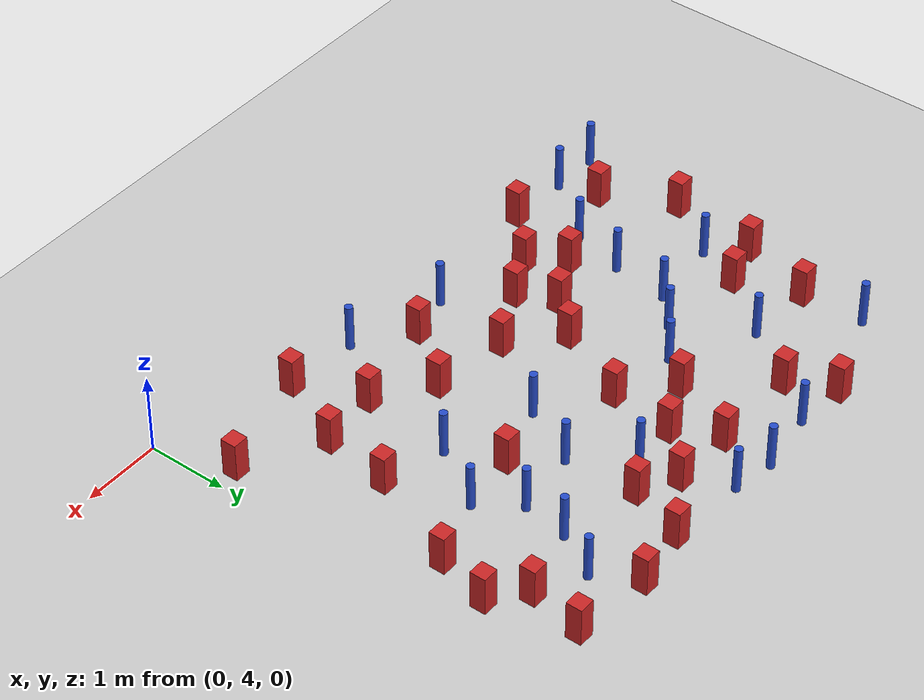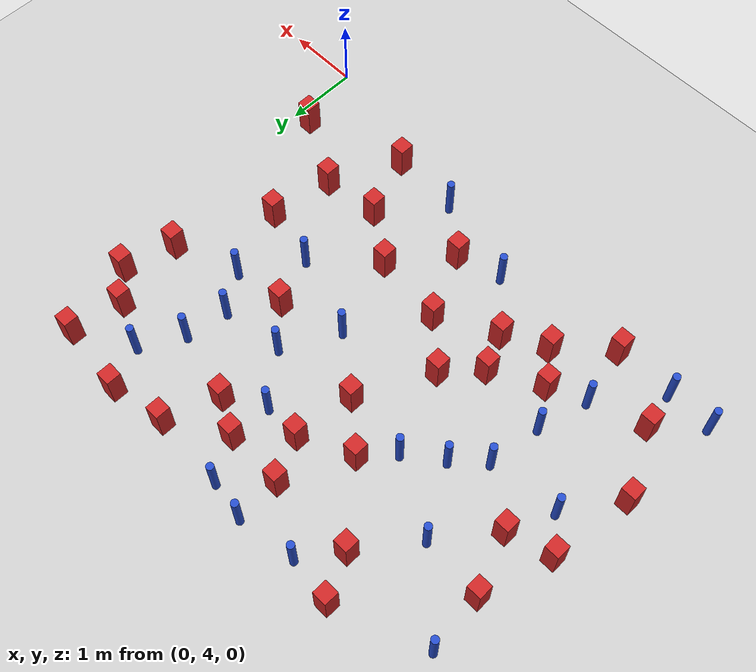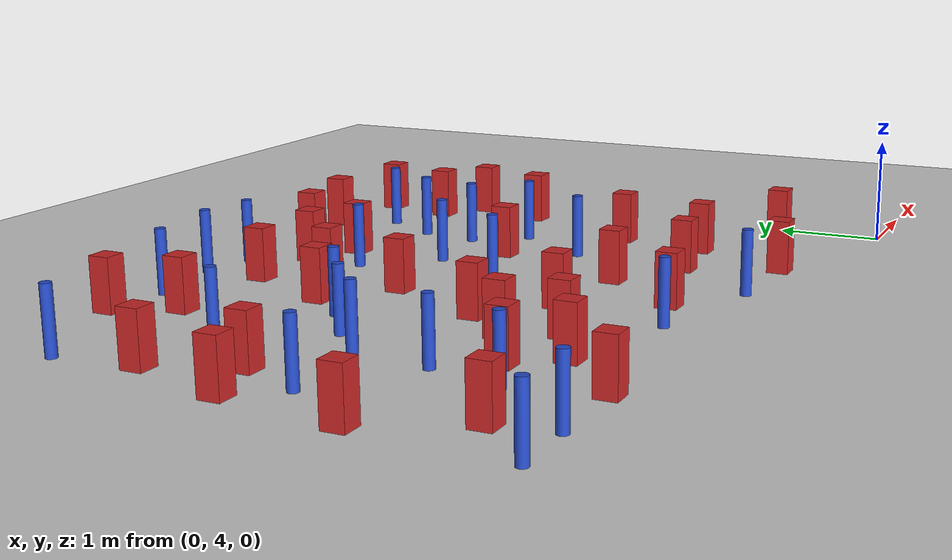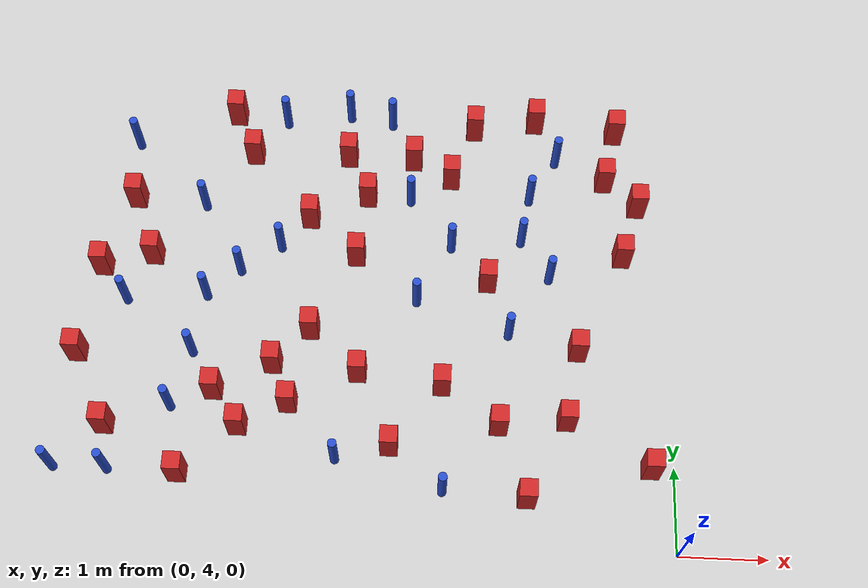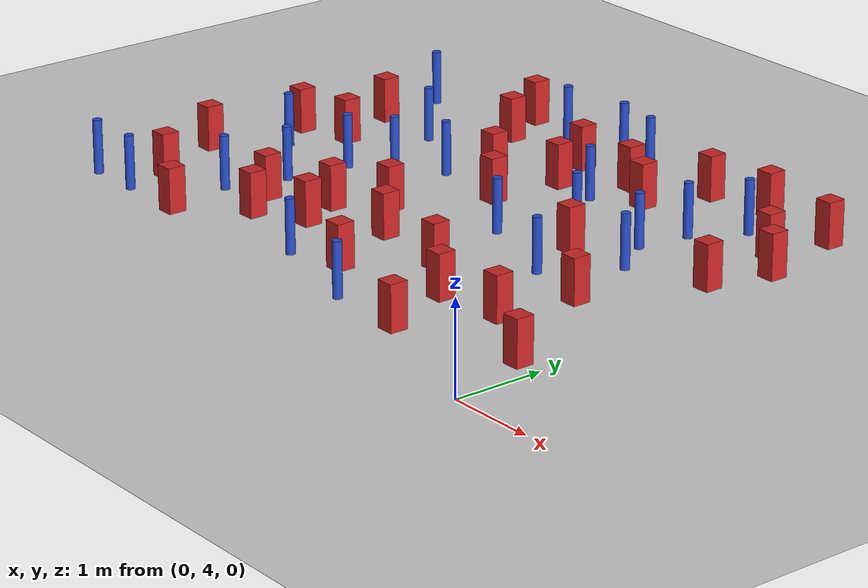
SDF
<sdf version="1.6">
 <world name="default">
  <model name="ground_plane">
   <static>1</static>
   <link name="link">
    <collision name="collision">
     <geometry><plane><normal>0 0 1</normal><size>100 100</size></plane></geometry>
     <surface><friction><ode><mu>100</mu><mu2>50</mu2></ode></friction></surface>
    </collision>
    <visual name="visual">
     <cast_shadows>0</cast_shadows>
     <geometry><plane><normal>0 0 1</normal><size>100 100</size></plane></geometry>
     <material>
      <ambient>1.0 1.0 1.0 1.0</ambient>
      <diffuse>0.8 0.8 0.8 1.0</diffuse>
      <specular>0.01 0.01 0.01 1.000000</specular>
     </material>
    </visual>
   </link>
  </model>
  <model name="square_post_obstacle2">
   <static>true</static>
   <pose>-3.61233754087 5.97910973367 1.91545236811e-07 -7.35059704564e-06 1.12565212e-07 2.39332434364e-05</pose>
   <link name="link">
    <pose>0 0 0.25 0 -0 0</pose>
    <inertial>
     <mass>100</mass>
     <inertia>
      <ixx>0.166667</ixx>
      <ixy>0</ixy>
      <ixz>0</ixz>
      <iyy>0.166667</iyy>
      <iyz>0</iyz>
      <izz>0.166667</izz>
     </inertia>
    </inertial>
    <collision name="collision"><geometry><box><size>.2 .2 .5</size></box></geometry></collision>
    <visual name="visual">
     <geometry><box><size>.2 .2 .5</size></box></geometry>
     <material>
      <script><name>Gazebo/Red</name><uri>file://media/materials/scripts/gazebo.material</uri></script>
     </material>
    </visual>
   </link>
  </model>
  <model name="pole_obstacle1">
   <static>true</static>
   <pose>-1.4139109991 7.27268750884 7.38925637345e-09 -8.47170692799e-08 1.24976765033e-08 -1.74513093018e-07</pose>
   <link name="link">
    <pose>0 0 0.3 0 -0 0</pose>
    <inertial>
     <mass>1</mass>
     <inertia><ixx>0.145833</ixx><ixy>0</ixy><ixz>0</ixz><iyy>0.145833</iyy><iyz>0</iyz><izz>0.125</izz></inertia>
    </inertial>
    <collision name="collision">
     <geometry><cylinder><radius>0.05</radius><length>.6</length></cylinder></geometry>
    </collision>
    <visual name="visual">
     <geometry><cylinder><radius>0.05</radius><length>.6</length></cylinder></geometry>
     <material>
      <script><name>Gazebo/Blue</name><uri>file://media/materials/scripts/gazebo.material</uri></script>
     </material>
    </visual>
   </link>
  </model>
  <model name="square_post_obstacle10">
   <static>true</static>
   <pose>-4.59428738183 6.04871072272 1.91545236811e-07 -7.35059704564e-06 1.12565212e-07 2.39332434364e-05</pose>
   <link name="link">
    <pose>0 0 0.25 0 -0 0</pose>
    <inertial>
     <mass>100</mass>
     <inertia>
      <ixx>0.166667</ixx>
      <ixy>0</ixy>
      <ixz>0</ixz>
      <iyy>0.166667</iyy>
      <iyz>0</iyz>
      <izz>0.166667</izz>
     </inertia>
    </inertial>
    <collision name="collision"><geometry><box><size>.2 .2 .5</size></box></geometry></collision>
    <visual name="visual">
     <geometry><box><size>.2 .2 .5</size></box></geometry>
     <material>
      <script><name>Gazebo/Red</name><uri>file://media/materials/scripts/gazebo.material</uri></script>
     </material>
    </visual>
   </link>
  </model>
  <model name="square_post_obstacle12">
   <static>true</static>
   <pose>-1.65785323321 4.5642074865 1.91545236811e-07 -7.35059704564e-06 1.12565212e-07 2.39332434364e-05</pose>
   <link name="link">
    <pose>0 0 0.25 0 -0 0</pose>
    <inertial>
     <mass>100</mass>
     <inertia>
      <ixx>0.166667</ixx>
      <ixy>0</ixy>
      <ixz>0</ixz>
      <iyy>0.166667</iyy>
      <iyz>0</iyz>
      <izz>0.166667</izz>
     </inertia>
    </inertial>
    <collision name="collision"><geometry><box><size>.2 .2 .5</size></box></geometry></collision>
    <visual name="visual">
     <geometry><box><size>.2 .2 .5</size></box></geometry>
     <material>
      <script><name>Gazebo/Red</name><uri>file://media/materials/scripts/gazebo.material</uri></script>
     </material>
    </visual>
   </link>
  </model>
  <model name="square_post_obstacle13">
   <static>true</static>
   <pose>-4.29329589986 7.95815774547 1.91545236811e-07 -7.35059704564e-06 1.12565212e-07 2.39332434364e-05</pose>
   <link name="link">
    <pose>0 0 0.25 0 -0 0</pose>
    <inertial>
     <mass>100</mass>
     <inertia>
      <ixx>0.166667</ixx>
      <ixy>0</ixy>
      <ixz>0</ixz>
      <iyy>0.166667</iyy>
      <iyz>0</iyz>
      <izz>0.166667</izz>
     </inertia>
    </inertial>
    <collision name="collision"><geometry><box><size>.2 .2 .5</size></box></geometry></collision>
    <visual name="visual">
     <geometry><box><size>.2 .2 .5</size></box></geometry>
     <material>
      <script><name>Gazebo/Red</name><uri>file://media/materials/scripts/gazebo.material</uri></script>
     </material>
    </visual>
   </link>
  </model>
  <model name="square_post_obstacle23">
   <static>true</static>
   <pose>-4.19277909428 6.49343664088 1.91545236811e-07 -7.35059704564e-06 1.12565212e-07 2.39332434364e-05</pose>
   <link name="link">
    <pose>0 0 0.25 0 -0 0</pose>
    <inertial>
     <mass>100</mass>
     <inertia>
      <ixx>0.166667</ixx>
      <ixy>0</ixy>
      <ixz>0</ixz>
      <iyy>0.166667</iyy>
      <iyz>0</iyz>
      <izz>0.166667</izz>
     </inertia>
    </inertial>
    <collision name="collision"><geometry><box><size>.2 .2 .5</size></box></geometry></collision>
    <visual name="visual">
     <geometry><box><size>.2 .2 .5</size></box></geometry>
     <material>
      <script><name>Gazebo/Red</name><uri>file://media/materials/scripts/gazebo.material</uri></script>
     </material>
    </visual>
   </link>
  </model>
  <model name="square_post_obstacle27">
   <static>true</static>
   <pose>-5.55627612815 4.70236604492 1.91545236811e-07 -7.35059704564e-06 1.12565212e-07 2.39332434364e-05</pose>
   <link name="link">
    <pose>0 0 0.25 0 -0 0</pose>
    <inertial>
     <mass>100</mass>
     <inertia>
      <ixx>0.166667</ixx>
      <ixy>0</ixy>
      <ixz>0</ixz>
      <iyy>0.166667</iyy>
      <iyz>0</iyz>
      <izz>0.166667</izz>
     </inertia>
    </inertial>
    <collision name="collision"><geometry><box><size>.2 .2 .5</size></box></geometry></collision>
    <visual name="visual">
     <geometry><box><size>.2 .2 .5</size></box></geometry>
     <material>
      <script><name>Gazebo/Red</name><uri>file://media/materials/scripts/gazebo.material</uri></script>
     </material>
    </visual>
   </link>
  </model>
  <model name="pole_obstacle19">
   <static>true</static>
   <pose>-2.97029968557 6.91473031838 7.38925637345e-09 -8.47170692798e-08 1.24976765033e-08 -1.74513093019e-07</pose>
   <link name="link">
    <pose>0 0 0.3 0 -0 0</pose>
    <inertial>
     <mass>1</mass>
     <inertia><ixx>0.145833</ixx><ixy>0</ixy><ixz>0</ixz><iyy>0.145833</iyy><iyz>0</iyz><izz>0.125</izz></inertia>
    </inertial>
    <collision name="collision">
     <geometry><cylinder><radius>0.05</radius><length>.6</length></cylinder></geometry>
    </collision>
    <visual name="visual">
     <geometry><cylinder><radius>0.05</radius><length>.6</length></cylinder></geometry>
     <material>
      <script><name>Gazebo/Blue</name><uri>file://media/materials/scripts/gazebo.material</uri></script>
     </material>
    </visual>
   </link>
  </model>
  <model name="pole_obstacle22">
   <static>true</static>
   <pose>-5.54417781117 6.16356947955 7.38925637345e-09 -8.47170692796e-08 1.24976764786e-08 -1.74513093032e-07</pose>
   <link name="link">
    <pose>0 0 0.3 0 -0 0</pose>
    <inertial>
     <mass>1</mass>
     <inertia><ixx>0.145833</ixx><ixy>0</ixy><ixz>0</ixz><iyy>0.145833</iyy><iyz>0</iyz><izz>0.125</izz></inertia>
    </inertial>
    <collision name="collision">
     <geometry><cylinder><radius>0.05</radius><length>.6</length></cylinder></geometry>
    </collision>
    <visual name="visual">
     <geometry><cylinder><radius>0.05</radius><length>.6</length></cylinder></geometry>
     <material>
      <script><name>Gazebo/Blue</name><uri>file://media/materials/scripts/gazebo.material</uri></script>
     </material>
    </visual>
   </link>
  </model>
  <model name="pole_obstacle26">
   <static>true</static>
   <pose>-1.65864158425 8.32955473973 7.38925637345e-09 -8.47170692798e-08 1.24976764881e-08 -1.74513093027e-07</pose>
   <link name="link">
    <pose>0 0 0.3 0 -0 0</pose>
    <inertial>
     <mass>1</mass>
     <inertia><ixx>0.145833</ixx><ixy>0</ixy><ixz>0</ixz><iyy>0.145833</iyy><iyz>0</iyz><izz>0.125</izz></inertia>
    </inertial>
    <collision name="collision">
     <geometry><cylinder><radius>0.05</radius><length>.6</length></cylinder></geometry>
    </collision>
    <visual name="visual">
     <geometry><cylinder><radius>0.05</radius><length>.6</length></cylinder></geometry>
     <material>
      <script><name>Gazebo/Blue</name><uri>file://media/materials/scripts/gazebo.material</uri></script>
     </material>
    </visual>
   </link>
  </model>
  <model name="square_post_obstacle32">
   <static>true</static>
   <pose>-0.273117182331 4.96032268304 1.91545236811e-07 -7.35059704564e-06 1.12565212e-07 2.39332434364e-05</pose>
   <link name="link">
    <pose>0 0 0.25 0 -0 0</pose>
    <inertial>
     <mass>100</mass>
     <inertia>
      <ixx>0.166667</ixx>
      <ixy>0</ixy>
      <ixz>0</ixz>
      <iyy>0.166667</iyy>
      <iyz>0</iyz>
      <izz>0.166667</izz>
     </inertia>
    </inertial>
    <collision name="collision"><geometry><box><size>.2 .2 .5</size></box></geometry></collision>
    <visual name="visual">
     <geometry><box><size>.2 .2 .5</size></box></geometry>
     <material>
      <script><name>Gazebo/Red</name><uri>file://media/materials/scripts/gazebo.material</uri></script>
     </material>
    </visual>
   </link>
  </model>
  <model name="square_post_obstacle35">
   <static>true</static>
   <pose>-0.550889906968 7.58429630441 1.91545236811e-07 -7.35059704564e-06 1.12565212e-07 2.39332434364e-05</pose>
   <link name="link">
    <pose>0 0 0.25 0 -0 0</pose>
    <inertial>
     <mass>100</mass>
     <inertia>
      <ixx>0.166667</ixx>
      <ixy>0</ixy>
      <ixz>0</ixz>
      <iyy>0.166667</iyy>
      <iyz>0</iyz>
      <izz>0.166667</izz>
     </inertia>
    </inertial>
    <collision name="collision"><geometry><box><size>.2 .2 .5</size></box></geometry></collision>
    <visual name="visual">
     <geometry><box><size>.2 .2 .5</size></box></geometry>
     <material>
      <script><name>Gazebo/Red</name><uri>file://media/materials/scripts/gazebo.material</uri></script>
     </material>
    </visual>
   </link>
  </model>
  <model name="pole_obstacle34">
   <static>true</static>
   <pose>-3.37079551736 9.34134316864 7.38925637345e-09 -8.47170692793e-08 1.24976764408e-08 -1.74513093041e-07</pose>
   <link name="link">
    <pose>0 0 0.3 0 -0 0</pose>
    <inertial>
     <mass>1</mass>
     <inertia><ixx>0.145833</ixx><ixy>0</ixy><ixz>0</ixz><iyy>0.145833</iyy><iyz>0</iyz><izz>0.125</izz></inertia>
    </inertial>
    <collision name="collision">
     <geometry><cylinder><radius>0.05</radius><length>.6</length></cylinder></geometry>
    </collision>
    <visual name="visual">
     <geometry><cylinder><radius>0.05</radius><length>.6</length></cylinder></geometry>
     <material>
      <script><name>Gazebo/Blue</name><uri>file://media/materials/scripts/gazebo.material</uri></script>
     </material>
    </visual>
   </link>
  </model>
  <model name="square_post_obstacle39">
   <static>true</static>
   <pose>-3.71095827912 7.4712342275 1.91545236811e-07 -7.35059704564e-06 1.12565212e-07 2.39332434364e-05</pose>
   <link name="link">
    <pose>0 0 0.25 0 -0 0</pose>
    <inertial>
     <mass>100</mass>
     <inertia>
      <ixx>0.166667</ixx>
      <ixy>0</ixy>
      <ixz>0</ixz>
      <iyy>0.166667</iyy>
      <iyz>0</iyz>
      <izz>0.166667</izz>
     </inertia>
    </inertial>
    <collision name="collision"><geometry><box><size>.2 .2 .5</size></box></geometry></collision>
    <visual name="visual">
     <geometry><box><size>.2 .2 .5</size></box></geometry>
     <material>
      <script><name>Gazebo/Red</name><uri>file://media/materials/scripts/gazebo.material</uri></script>
     </material>
    </visual>
   </link>
  </model>
  <model name="pole_obstacle39">
   <static>true</static>
   <pose>-2.58589966499 7.64583658328 7.38925637345e-09 -8.47170692798e-08 1.24976765033e-08 -1.74513093019e-07</pose>
   <link name="link">
    <pose>0 0 0.3 0 -0 0</pose>
    <inertial>
     <mass>1</mass>
     <inertia><ixx>0.145833</ixx><ixy>0</ixy><ixz>0</ixz><iyy>0.145833</iyy><iyz>0</iyz><izz>0.125</izz></inertia>
    </inertial>
    <collision name="collision">
     <geometry><cylinder><radius>0.05</radius><length>.6</length></cylinder></geometry>
    </collision>
    <visual name="visual">
     <geometry><cylinder><radius>0.05</radius><length>.6</length></cylinder></geometry>
     <material>
      <script><name>Gazebo/Blue</name><uri>file://media/materials/scripts/gazebo.material</uri></script>
     </material>
    </visual>
   </link>
  </model>
  <model name="pole_obstacle40">
   <static>true</static>
   <pose>-6.38858166414 6.80108780517 7.38925637345e-09 -8.47170692796e-08 1.24976764786e-08 -1.74513093032e-07</pose>
   <link name="link">
    <pose>0 0 0.3 0 -0 0</pose>
    <inertial>
     <mass>1</mass>
     <inertia><ixx>0.145833</ixx><ixy>0</ixy><ixz>0</ixz><iyy>0.145833</iyy><iyz>0</iyz><izz>0.125</izz></inertia>
    </inertial>
    <collision name="collision">
     <geometry><cylinder><radius>0.05</radius><length>.6</length></cylinder></geometry>
    </collision>
    <visual name="visual">
     <geometry><cylinder><radius>0.05</radius><length>.6</length></cylinder></geometry>
     <material>
      <script><name>Gazebo/Blue</name><uri>file://media/materials/scripts/gazebo.material</uri></script>
     </material>
    </visual>
   </link>
  </model>
  <model name="pole_obstacle43">
   <static>true</static>
   <pose>-3.89463095373 9.43065798473 7.38925637345e-09 -8.47170692799e-08 1.24976765012e-08 -1.74513093021e-07</pose>
   <link name="link">
    <pose>0 0 0.3 0 -0 0</pose>
    <inertial>
     <mass>1</mass>
     <inertia><ixx>0.145833</ixx><ixy>0</ixy><ixz>0</ixz><iyy>0.145833</iyy><iyz>0</iyz><izz>0.125</izz></inertia>
    </inertial>
    <collision name="collision">
     <geometry><cylinder><radius>0.05</radius><length>.6</length></cylinder></geometry>
    </collision>
    <visual name="visual">
     <geometry><cylinder><radius>0.05</radius><length>.6</length></cylinder></geometry>
     <material>
      <script><name>Gazebo/Blue</name><uri>file://media/materials/scripts/gazebo.material</uri></script>
     </material>
    </visual>
   </link>
  </model>
  <model name="square_post_obstacle43">
   <static>true</static>
   <pose>-2.61586721732 8.57212742855 1.91545236811e-07 -7.35059704564e-06 1.12565212e-07 2.39332434364e-05</pose>
   <link name="link">
    <pose>0 0 0.25 0 -0 0</pose>
    <inertial>
     <mass>100</mass>
     <inertia>
      <ixx>0.166667</ixx>
      <ixy>0</ixy>
      <ixz>0</ixz>
      <iyy>0.166667</iyy>
      <iyz>0</iyz>
      <izz>0.166667</izz>
     </inertia>
    </inertial>
    <collision name="collision"><geometry><box><size>.2 .2 .5</size></box></geometry></collision>
    <visual name="visual">
     <geometry><box><size>.2 .2 .5</size></box></geometry>
     <material>
      <script><name>Gazebo/Red</name><uri>file://media/materials/scripts/gazebo.material</uri></script>
     </material>
    </visual>
   </link>
  </model>
  <model name="square_post_obstacle51">
   <static>true</static>
   <pose>-2.63946046674 5.85517701132 1.91545236811e-07 -7.35059704564e-06 1.12565212e-07 2.39332434364e-05</pose>
   <link name="link">
    <pose>0 0 0.25 0 -0 0</pose>
    <inertial>
     <mass>100</mass>
     <inertia>
      <ixx>0.166667</ixx>
      <ixy>0</ixy>
      <ixz>0</ixz>
      <iyy>0.166667</iyy>
      <iyz>0</iyz>
      <izz>0.166667</izz>
     </inertia>
    </inertial>
    <collision name="collision"><geometry><box><size>.2 .2 .5</size></box></geometry></collision>
    <visual name="visual">
     <geometry><box><size>.2 .2 .5</size></box></geometry>
     <material>
      <script><name>Gazebo/Red</name><uri>file://media/materials/scripts/gazebo.material</uri></script>
     </material>
    </visual>
   </link>
  </model>
  <model name="pole_obstacle51">
   <static>true</static>
   <pose>-5.0790285044 7.23374785521 7.38925637345e-09 -8.47170692796e-08 1.24976764786e-08 -1.74513093032e-07</pose>
   <link name="link">
    <pose>0 0 0.3 0 -0 0</pose>
    <inertial>
     <mass>1</mass>
     <inertia><ixx>0.145833</ixx><ixy>0</ixy><ixz>0</ixz><iyy>0.145833</iyy><iyz>0</iyz><izz>0.125</izz></inertia>
    </inertial>
    <collision name="collision">
     <geometry><cylinder><radius>0.05</radius><length>.6</length></cylinder></geometry>
    </collision>
    <visual name="visual">
     <geometry><cylinder><radius>0.05</radius><length>.6</length></cylinder></geometry>
     <material>
      <script><name>Gazebo/Blue</name><uri>file://media/materials/scripts/gazebo.material</uri></script>
     </material>
    </visual>
   </link>
  </model>
  <model name="square_post_obstacle58">
   <static>true</static>
   <pose>-4.38561116204 5.57476429441 1.91545236811e-07 -7.35059704564e-06 1.12565212e-07 2.39332434364e-05</pose>
   <link name="link">
    <pose>0 0 0.25 0 -0 0</pose>
    <inertial>
     <mass>100</mass>
     <inertia>
      <ixx>0.166667</ixx>
      <ixy>0</ixy>
      <ixz>0</ixz>
      <iyy>0.166667</iyy>
      <iyz>0</iyz>
      <izz>0.166667</izz>
     </inertia>
    </inertial>
    <collision name="collision"><geometry><box><size>.2 .2 .5</size></box></geometry></collision>
    <visual name="visual">
     <geometry><box><size>.2 .2 .5</size></box></geometry>
     <material>
      <script><name>Gazebo/Red</name><uri>file://media/materials/scripts/gazebo.material</uri></script>
     </material>
    </visual>
   </link>
  </model>
  <model name="pole_obstacle59">
   <static>true</static>
   <pose>-3.81247183063 4.93679487746 7.38925637345e-09 -8.47170692798e-08 1.24976765033e-08 -1.74513093019e-07</pose>
   <link name="link">
    <pose>0 0 0.3 0 -0 0</pose>
    <inertial>
     <mass>1</mass>
     <inertia><ixx>0.145833</ixx><ixy>0</ixy><ixz>0</ixz><iyy>0.145833</iyy><iyz>0</iyz><izz>0.125</izz></inertia>
    </inertial>
    <collision name="collision">
     <geometry><cylinder><radius>0.05</radius><length>.6</length></cylinder></geometry>
    </collision>
    <visual name="visual">
     <geometry><cylinder><radius>0.05</radius><length>.6</length></cylinder></geometry>
     <material>
      <script><name>Gazebo/Blue</name><uri>file://media/materials/scripts/gazebo.material</uri></script>
     </material>
    </visual>
   </link>
  </model>
  <model name="square_post_obstacle65">
   <static>true</static>
   <pose>-5.30541844813 9.38369008933 1.91545236811e-07 -7.35059704564e-06 1.12565212e-07 2.39332434364e-05</pose>
   <link name="link">
    <pose>0 0 0.25 0 -0 0</pose>
    <inertial>
     <mass>100</mass>
     <inertia>
      <ixx>0.166667</ixx>
      <ixy>0</ixy>
      <ixz>0</ixz>
      <iyy>0.166667</iyy>
      <iyz>0</iyz>
      <izz>0.166667</izz>
     </inertia>
    </inertial>
    <collision name="collision"><geometry><box><size>.2 .2 .5</size></box></geometry></collision>
    <visual name="visual">
     <geometry><box><size>.2 .2 .5</size></box></geometry>
     <material>
      <script><name>Gazebo/Red</name><uri>file://media/materials/scripts/gazebo.material</uri></script>
     </material>
    </visual>
   </link>
  </model>
  <model name="pole_obstacle72">
   <static>true</static>
   <pose>-6.96591692896 4.71998143609 7.38925637345e-09 -8.47170692796e-08 1.24976764786e-08 -1.74513093032e-07</pose>
   <link name="link">
    <pose>0 0 0.3 0 -0 0</pose>
    <inertial>
     <mass>1</mass>
     <inertia><ixx>0.145833</ixx><ixy>0</ixy><ixz>0</ixz><iyy>0.145833</iyy><iyz>0</iyz><izz>0.125</izz></inertia>
    </inertial>
    <collision name="collision">
     <geometry><cylinder><radius>0.05</radius><length>.6</length></cylinder></geometry>
    </collision>
    <visual name="visual">
     <geometry><cylinder><radius>0.05</radius><length>.6</length></cylinder></geometry>
     <material>
      <script><name>Gazebo/Blue</name><uri>file://media/materials/scripts/gazebo.material</uri></script>
     </material>
    </visual>
   </link>
  </model>
  <model name="square_post_obstacle85">
   <static>true</static>
   <pose>-1.21189018178 5.48822959276 1.91545236811e-07 -7.35059704564e-06 1.12565212e-07 2.39332434364e-05</pose>
   <link name="link">
    <pose>0 0 0.25 0 -0 0</pose>
    <inertial>
     <mass>100</mass>
     <inertia>
      <ixx>0.166667</ixx>
      <ixy>0</ixy>
      <ixz>0</ixz>
      <iyy>0.166667</iyy>
      <iyz>0</iyz>
      <izz>0.166667</izz>
     </inertia>
    </inertial>
    <collision name="collision"><geometry><box><size>.2 .2 .5</size></box></geometry></collision>
    <visual name="visual">
     <geometry><box><size>.2 .2 .5</size></box></geometry>
     <material>
      <script><name>Gazebo/Red</name><uri>file://media/materials/scripts/gazebo.material</uri></script>
     </material>
    </visual>
   </link>
  </model>
  <model name="pole_obstacle103">
   <static>true</static>
   <pose>-5.58402189836 8.09331958219 7.38925637345e-09 -8.471706928e-08 1.24976765081e-08 -1.74513093015e-07</pose>
   <link name="link">
    <pose>0 0 0.3 0 -0 0</pose>
    <inertial>
     <mass>1</mass>
     <inertia><ixx>0.145833</ixx><ixy>0</ixy><ixz>0</ixz><iyy>0.145833</iyy><iyz>0</iyz><izz>0.125</izz></inertia>
    </inertial>
    <collision name="collision">
     <geometry><cylinder><radius>0.05</radius><length>.6</length></cylinder></geometry>
    </collision>
    <visual name="visual">
     <geometry><cylinder><radius>0.05</radius><length>.6</length></cylinder></geometry>
     <material>
      <script><name>Gazebo/Blue</name><uri>file://media/materials/scripts/gazebo.material</uri></script>
     </material>
    </visual>
   </link>
  </model>
  <model name="square_post_obstacle98">
   <static>true</static>
   <pose>-1.98268623416 5.40091777639 1.91545236811e-07 -7.35059704564e-06 1.12565212e-07 2.39332434364e-05</pose>
   <link name="link">
    <pose>0 0 0.25 0 -0 0</pose>
    <inertial>
     <mass>100</mass>
     <inertia>
      <ixx>0.166667</ixx>
      <ixy>0</ixy>
      <ixz>0</ixz>
      <iyy>0.166667</iyy>
      <iyz>0</iyz>
      <izz>0.166667</izz>
     </inertia>
    </inertial>
    <collision name="collision"><geometry><box><size>.2 .2 .5</size></box></geometry></collision>
    <visual name="visual">
     <geometry><box><size>.2 .2 .5</size></box></geometry>
     <material>
      <script><name>Gazebo/Red</name><uri>file://media/materials/scripts/gazebo.material</uri></script>
     </material>
    </visual>
   </link>
  </model>
  <model name="pole_obstacle113">
   <static>true</static>
   <pose>-5.72724617112 5.48468762054 7.38925637345e-09 -8.47170692796e-08 1.24976764786e-08 -1.74513093032e-07</pose>
   <link name="link">
    <pose>0 0 0.3 0 -0 0</pose>
    <inertial>
     <mass>1</mass>
     <inertia><ixx>0.145833</ixx><ixy>0</ixy><ixz>0</ixz><iyy>0.145833</iyy><iyz>0</iyz><izz>0.125</izz></inertia>
    </inertial>
    <collision name="collision">
     <geometry><cylinder><radius>0.05</radius><length>.6</length></cylinder></geometry>
    </collision>
    <visual name="visual">
     <geometry><cylinder><radius>0.05</radius><length>.6</length></cylinder></geometry>
     <material>
      <script><name>Gazebo/Blue</name><uri>file://media/materials/scripts/gazebo.material</uri></script>
     </material>
    </visual>
   </link>
  </model>
  <model name="pole_obstacle114">
   <static>true</static>
   <pose>-1.3455644918 8.87620255559 7.38925637345e-09 -8.47170692798e-08 1.24976764881e-08 -1.74513093027e-07</pose>
   <link name="link">
    <pose>0 0 0.3 0 -0 0</pose>
    <inertial>
     <mass>1</mass>
     <inertia><ixx>0.145833</ixx><ixy>0</ixy><ixz>0</ixz><iyy>0.145833</iyy><iyz>0</iyz><izz>0.125</izz></inertia>
    </inertial>
    <collision name="collision">
     <geometry><cylinder><radius>0.05</radius><length>.6</length></cylinder></geometry>
    </collision>
    <visual name="visual">
     <geometry><cylinder><radius>0.05</radius><length>.6</length></cylinder></geometry>
     <material>
      <script><name>Gazebo/Blue</name><uri>file://media/materials/scripts/gazebo.material</uri></script>
     </material>
    </visual>
   </link>
  </model>
  <model name="square_post_obstacle102">
   <static>true</static>
   <pose>-1.08592434717 6.34666777054 1.91545236811e-07 -7.35059704564e-06 1.12565212e-07 2.39332434364e-05</pose>
   <link name="link">
    <pose>0 0 0.25 0 -0 0</pose>
    <inertial>
     <mass>100</mass>
     <inertia>
      <ixx>0.166667</ixx>
      <ixy>0</ixy>
      <ixz>0</ixz>
      <iyy>0.166667</iyy>
      <iyz>0</iyz>
      <izz>0.166667</izz>
     </inertia>
    </inertial>
    <collision name="collision"><geometry><box><size>.2 .2 .5</size></box></geometry></collision>
    <visual name="visual">
     <geometry><box><size>.2 .2 .5</size></box></geometry>
     <material>
      <script><name>Gazebo/Red</name><uri>file://media/materials/scripts/gazebo.material</uri></script>
     </material>
    </visual>
   </link>
  </model>
  <model name="pole_obstacle119">
   <static>true</static>
   <pose>-6.49651534312 8.92513045386 7.38925637345e-09 -8.471706928e-08 1.24976765081e-08 -1.74513093015e-07</pose>
   <link name="link">
    <pose>0 0 0.3 0 -0 0</pose>
    <inertial>
     <mass>1</mass>
     <inertia><ixx>0.145833</ixx><ixy>0</ixy><ixz>0</ixz><iyy>0.145833</iyy><iyz>0</iyz><izz>0.125</izz></inertia>
    </inertial>
    <collision name="collision">
     <geometry><cylinder><radius>0.05</radius><length>.6</length></cylinder></geometry>
    </collision>
    <visual name="visual">
     <geometry><cylinder><radius>0.05</radius><length>.6</length></cylinder></geometry>
     <material>
      <script><name>Gazebo/Blue</name><uri>file://media/materials/scripts/gazebo.material</uri></script>
     </material>
    </visual>
   </link>
  </model>
  <model name="pole_obstacle125">
   <static>true</static>
   <pose>-2.59388988847 4.61076307312 7.38925637345e-09 -8.47170692798e-08 1.24976765033e-08 -1.74513093019e-07</pose>
   <link name="link">
    <pose>0 0 0.3 0 -0 0</pose>
    <inertial>
     <mass>1</mass>
     <inertia><ixx>0.145833</ixx><ixy>0</ixy><ixz>0</ixz><iyy>0.145833</iyy><iyz>0</iyz><izz>0.125</izz></inertia>
    </inertial>
    <collision name="collision">
     <geometry><cylinder><radius>0.05</radius><length>.6</length></cylinder></geometry>
    </collision>
    <visual name="visual">
     <geometry><cylinder><radius>0.05</radius><length>.6</length></cylinder></geometry>
     <material>
      <script><name>Gazebo/Blue</name><uri>file://media/materials/scripts/gazebo.material</uri></script>
     </material>
    </visual>
   </link>
  </model>
  <model name="square_post_obstacle124">
   <static>true</static>
   <pose>-2.34807499385 9.28182046634 1.91545236811e-07 -7.35059704564e-06 1.12565212e-07 2.39332434364e-05</pose>
   <link name="link">
    <pose>0 0 0.25 0 -0 0</pose>
    <inertial>
     <mass>100</mass>
     <inertia>
      <ixx>0.166667</ixx>
      <ixy>0</ixy>
      <ixz>0</ixz>
      <iyy>0.166667</iyy>
      <iyz>0</iyz>
      <izz>0.166667</izz>
     </inertia>
    </inertial>
    <collision name="collision"><geometry><box><size>.2 .2 .5</size></box></geometry></collision>
    <visual name="visual">
     <geometry><box><size>.2 .2 .5</size></box></geometry>
     <material>
      <script><name>Gazebo/Red</name><uri>file://media/materials/scripts/gazebo.material</uri></script>
     </material>
    </visual>
   </link>
  </model>
  <model name="square_post_obstacle127">
   <static>true</static>
   <pose>-6.87235109368 6.10413647904 1.91545236811e-07 -7.35059704564e-06 1.12565212e-07 2.39332434364e-05</pose>
   <link name="link">
    <pose>0 0 0.25 0 -0 0</pose>
    <inertial>
     <mass>100</mass>
     <inertia>
      <ixx>0.166667</ixx>
      <ixy>0</ixy>
      <ixz>0</ixz>
      <iyy>0.166667</iyy>
      <iyz>0</iyz>
      <izz>0.166667</izz>
     </inertia>
    </inertial>
    <collision name="collision"><geometry><box><size>.2 .2 .5</size></box></geometry></collision>
    <visual name="visual">
     <geometry><box><size>.2 .2 .5</size></box></geometry>
     <material>
      <script><name>Gazebo/Red</name><uri>file://media/materials/scripts/gazebo.material</uri></script>
     </material>
    </visual>
   </link>
  </model>
  <model name="square_post_obstacle130">
   <static>true</static>
   <pose>-6.71471581659 7.22256529491 1.91545236811e-07 -7.35059704564e-06 1.12565212e-07 2.39332434364e-05</pose>
   <link name="link">
    <pose>0 0 0.25 0 -0 0</pose>
    <inertial>
     <mass>100</mass>
     <inertia>
      <ixx>0.166667</ixx>
      <ixy>0</ixy>
      <ixz>0</ixz>
      <iyy>0.166667</iyy>
      <iyz>0</iyz>
      <izz>0.166667</izz>
     </inertia>
    </inertial>
    <collision name="collision"><geometry><box><size>.2 .2 .5</size></box></geometry></collision>
    <visual name="visual">
     <geometry><box><size>.2 .2 .5</size></box></geometry>
     <material>
      <script><name>Gazebo/Red</name><uri>file://media/materials/scripts/gazebo.material</uri></script>
     </material>
    </visual>
   </link>
  </model>
  <model name="square_post_obstacle132">
   <static>true</static>
   <pose>-0.75359628225 8.60926794908 1.91545236811e-07 -7.35059704564e-06 1.12565212e-07 2.39332434364e-05</pose>
   <link name="link">
    <pose>0 0 0.25 0 -0 0</pose>
    <inertial>
     <mass>100</mass>
     <inertia>
      <ixx>0.166667</ixx>
      <ixy>0</ixy>
      <ixz>0</ixz>
      <iyy>0.166667</iyy>
      <iyz>0</iyz>
      <izz>0.166667</izz>
     </inertia>
    </inertial>
    <collision name="collision"><geometry><box><size>.2 .2 .5</size></box></geometry></collision>
    <visual name="visual">
     <geometry><box><size>.2 .2 .5</size></box></geometry>
     <material>
      <script><name>Gazebo/Red</name><uri>file://media/materials/scripts/gazebo.material</uri></script>
     </material>
    </visual>
   </link>
  </model>
  <model name="square_post_obstacle147">
   <static>true</static>
   <pose>-0.362402553739 8.27107950808 1.91545236811e-07 -7.35059704564e-06 1.12565212e-07 2.39332434364e-05</pose>
   <link name="link">
    <pose>0 0 0.25 0 -0 0</pose>
    <inertial>
     <mass>100</mass>
     <inertia>
      <ixx>0.166667</ixx>
      <ixy>0</ixy>
      <ixz>0</ixz>
      <iyy>0.166667</iyy>
      <iyz>0</iyz>
      <izz>0.166667</izz>
     </inertia>
    </inertial>
    <collision name="collision"><geometry><box><size>.2 .2 .5</size></box></geometry></collision>
    <visual name="visual">
     <geometry><box><size>.2 .2 .5</size></box></geometry>
     <material>
      <script><name>Gazebo/Red</name><uri>file://media/materials/scripts/gazebo.material</uri></script>
     </material>
    </visual>
   </link>
  </model>
  <model name="square_post_obstacle148">
   <static>true</static>
   <pose>-3.88095420332 8.83477543816 1.91545236811e-07 -7.35059704564e-06 1.12565212e-07 2.39332434364e-05</pose>
   <link name="link">
    <pose>0 0 0.25 0 -0 0</pose>
    <inertial>
     <mass>100</mass>
     <inertia>
      <ixx>0.166667</ixx>
      <ixy>0</ixy>
      <ixz>0</ixz>
      <iyy>0.166667</iyy>
      <iyz>0</iyz>
      <izz>0.166667</izz>
     </inertia>
    </inertial>
    <collision name="collision"><geometry><box><size>.2 .2 .5</size></box></geometry></collision>
    <visual name="visual">
     <geometry><box><size>.2 .2 .5</size></box></geometry>
     <material>
      <script><name>Gazebo/Red</name><uri>file://media/materials/scripts/gazebo.material</uri></script>
     </material>
    </visual>
   </link>
  </model>
  <model name="pole_obstacle166">
   <static>true</static>
   <pose>-1.7518789918 7.75678709162 7.38925637345e-09 -8.47170692799e-08 1.24976765033e-08 -1.74513093018e-07</pose>
   <link name="link">
    <pose>0 0 0.3 0 -0 0</pose>
    <inertial>
     <mass>1</mass>
     <inertia><ixx>0.145833</ixx><ixy>0</ixy><ixz>0</ixz><iyy>0.145833</iyy><iyz>0</iyz><izz>0.125</izz></inertia>
    </inertial>
    <collision name="collision">
     <geometry><cylinder><radius>0.05</radius><length>.6</length></cylinder></geometry>
    </collision>
    <visual name="visual">
     <geometry><cylinder><radius>0.05</radius><length>.6</length></cylinder></geometry>
     <material>
      <script><name>Gazebo/Blue</name><uri>file://media/materials/scripts/gazebo.material</uri></script>
     </material>
    </visual>
   </link>
  </model>
  <model name="pole_obstacle170">
   <static>true</static>
   <pose>-3.09740554841 8.26414598943 7.38925637345e-09 -8.47170692799e-08 1.24976765012e-08 -1.74513093021e-07</pose>
   <link name="link">
    <pose>0 0 0.3 0 -0 0</pose>
    <inertial>
     <mass>1</mass>
     <inertia><ixx>0.145833</ixx><ixy>0</ixy><ixz>0</ixz><iyy>0.145833</iyy><iyz>0</iyz><izz>0.125</izz></inertia>
    </inertial>
    <collision name="collision">
     <geometry><cylinder><radius>0.05</radius><length>.6</length></cylinder></geometry>
    </collision>
    <visual name="visual">
     <geometry><cylinder><radius>0.05</radius><length>.6</length></cylinder></geometry>
     <material>
      <script><name>Gazebo/Blue</name><uri>file://media/materials/scripts/gazebo.material</uri></script>
     </material>
    </visual>
   </link>
  </model>
  <model name="pole_obstacle173">
   <static>true</static>
   <pose>-1.88347979252 6.53169620384 7.38925637345e-09 -8.47170692799e-08 1.24976765033e-08 -1.74513093018e-07</pose>
   <link name="link">
    <pose>0 0 0.3 0 -0 0</pose>
    <inertial>
     <mass>1</mass>
     <inertia><ixx>0.145833</ixx><ixy>0</ixy><ixz>0</ixz><iyy>0.145833</iyy><iyz>0</iyz><izz>0.125</izz></inertia>
    </inertial>
    <collision name="collision">
     <geometry><cylinder><radius>0.05</radius><length>.6</length></cylinder></geometry>
    </collision>
    <visual name="visual">
     <geometry><cylinder><radius>0.05</radius><length>.6</length></cylinder></geometry>
     <material>
      <script><name>Gazebo/Blue</name><uri>file://media/materials/scripts/gazebo.material</uri></script>
     </material>
    </visual>
   </link>
  </model>
  <model name="square_post_obstacle164">
   <static>true</static>
   <pose>-4.93447408976 5.28130940571 1.91545236811e-07 -7.35059704564e-06 1.12565212e-07 2.39332434364e-05</pose>
   <link name="link">
    <pose>0 0 0.25 0 -0 0</pose>
    <inertial>
     <mass>100</mass>
     <inertia>
      <ixx>0.166667</ixx>
      <ixy>0</ixy>
      <ixz>0</ixz>
      <iyy>0.166667</iyy>
      <iyz>0</iyz>
      <izz>0.166667</izz>
     </inertia>
    </inertial>
    <collision name="collision"><geometry><box><size>.2 .2 .5</size></box></geometry></collision>
    <visual name="visual">
     <geometry><box><size>.2 .2 .5</size></box></geometry>
     <material>
      <script><name>Gazebo/Red</name><uri>file://media/materials/scripts/gazebo.material</uri></script>
     </material>
    </visual>
   </link>
  </model>
  <model name="square_post_obstacle167">
   <static>true</static>
   <pose>-3.20725118164 5.10645260623 1.91545236811e-07 -7.35059704564e-06 1.12565212e-07 2.39332434364e-05</pose>
   <link name="link">
    <pose>0 0 0.25 0 -0 0</pose>
    <inertial>
     <mass>100</mass>
     <inertia>
      <ixx>0.166667</ixx>
      <ixy>0</ixy>
      <ixz>0</ixz>
      <iyy>0.166667</iyy>
      <iyz>0</iyz>
      <izz>0.166667</izz>
     </inertia>
    </inertial>
    <collision name="collision"><geometry><box><size>.2 .2 .5</size></box></geometry></collision>
    <visual name="visual">
     <geometry><box><size>.2 .2 .5</size></box></geometry>
     <material>
      <script><name>Gazebo/Red</name><uri>file://media/materials/scripts/gazebo.material</uri></script>
     </material>
    </visual>
   </link>
  </model>
  <model name="square_post_obstacle169">
   <static>true</static>
   <pose>-6.12856905751 7.3930308233 1.91545236811e-07 -7.35059704564e-06 1.12565212e-07 2.39332434364e-05</pose>
   <link name="link">
    <pose>0 0 0.25 0 -0 0</pose>
    <inertial>
     <mass>100</mass>
     <inertia>
      <ixx>0.166667</ixx>
      <ixy>0</ixy>
      <ixz>0</ixz>
      <iyy>0.166667</iyy>
      <iyz>0</iyz>
      <izz>0.166667</izz>
     </inertia>
    </inertial>
    <collision name="collision"><geometry><box><size>.2 .2 .5</size></box></geometry></collision>
    <visual name="visual">
     <geometry><box><size>.2 .2 .5</size></box></geometry>
     <material>
      <script><name>Gazebo/Red</name><uri>file://media/materials/scripts/gazebo.material</uri></script>
     </material>
    </visual>
   </link>
  </model>
  <model name="pole_obstacle179">
   <static>true</static>
   <pose>-4.62183697193 7.56758340401 7.38925637345e-09 -8.47170692796e-08 1.24976764786e-08 -1.74513093032e-07</pose>
   <link name="link">
    <pose>0 0 0.3 0 -0 0</pose>
    <inertial>
     <mass>1</mass>
     <inertia><ixx>0.145833</ixx><ixy>0</ixy><ixz>0</ixz><iyy>0.145833</iyy><iyz>0</iyz><izz>0.125</izz></inertia>
    </inertial>
    <collision name="collision">
     <geometry><cylinder><radius>0.05</radius><length>.6</length></cylinder></geometry>
    </collision>
    <visual name="visual">
     <geometry><cylinder><radius>0.05</radius><length>.6</length></cylinder></geometry>
     <material>
      <script><name>Gazebo/Blue</name><uri>file://media/materials/scripts/gazebo.material</uri></script>
     </material>
    </visual>
   </link>
  </model>
  <model name="square_post_obstacle179">
   <static>true</static>
   <pose>-5.25040799244 5.69913787033 1.91545236811e-07 -7.35059704564e-06 1.12565212e-07 2.39332434364e-05</pose>
   <link name="link">
    <pose>0 0 0.25 0 -0 0</pose>
    <inertial>
     <mass>100</mass>
     <inertia>
      <ixx>0.166667</ixx>
      <ixy>0</ixy>
      <ixz>0</ixz>
      <iyy>0.166667</iyy>
      <iyz>0</iyz>
      <izz>0.166667</izz>
     </inertia>
    </inertial>
    <collision name="collision"><geometry><box><size>.2 .2 .5</size></box></geometry></collision>
    <visual name="visual">
     <geometry><box><size>.2 .2 .5</size></box></geometry>
     <material>
      <script><name>Gazebo/Red</name><uri>file://media/materials/scripts/gazebo.material</uri></script>
     </material>
    </visual>
   </link>
  </model>
  <model name="square_post_obstacle184">
   <static>true</static>
   <pose>-6.4473179419 5.23450993421 1.91545236811e-07 -7.35059704564e-06 1.12565212e-07 2.39332434364e-05</pose>
   <link name="link">
    <pose>0 0 0.25 0 -0 0</pose>
    <inertial>
     <mass>100</mass>
     <inertia>
      <ixx>0.166667</ixx>
      <ixy>0</ixy>
      <ixz>0</ixz>
      <iyy>0.166667</iyy>
      <iyz>0</iyz>
      <izz>0.166667</izz>
     </inertia>
    </inertial>
    <collision name="collision"><geometry><box><size>.2 .2 .5</size></box></geometry></collision>
    <visual name="visual">
     <geometry><box><size>.2 .2 .5</size></box></geometry>
     <material>
      <script><name>Gazebo/Red</name><uri>file://media/materials/scripts/gazebo.material</uri></script>
     </material>
    </visual>
   </link>
  </model>
  <model name="square_post_obstacle193">
   <static>true</static>
   <pose>-5.04218809969 8.82555389131 1.91545236811e-07 -7.35059704564e-06 1.12565212e-07 2.39332434364e-05</pose>
   <link name="link">
    <pose>0 0 0.25 0 -0 0</pose>
    <inertial>
     <mass>100</mass>
     <inertia>
      <ixx>0.166667</ixx>
      <ixy>0</ixy>
      <ixz>0</ixz>
      <iyy>0.166667</iyy>
      <iyz>0</iyz>
      <izz>0.166667</izz>
     </inertia>
    </inertial>
    <collision name="collision"><geometry><box><size>.2 .2 .5</size></box></geometry></collision>
    <visual name="visual">
     <geometry><box><size>.2 .2 .5</size></box></geometry>
     <material>
      <script><name>Gazebo/Red</name><uri>file://media/materials/scripts/gazebo.material</uri></script>
     </material>
    </visual>
   </link>
  </model>
  <model name="square_post_obstacle194">
   <static>true</static>
   <pose>-6.42119902148 8.15253640386 1.91545236811e-07 -7.35059704564e-06 1.12565212e-07 2.39332434364e-05</pose>
   <link name="link">
    <pose>0 0 0.25 0 -0 0</pose>
    <inertial>
     <mass>100</mass>
     <inertia>
      <ixx>0.166667</ixx>
      <ixy>0</ixy>
      <ixz>0</ixz>
      <iyy>0.166667</iyy>
      <iyz>0</iyz>
      <izz>0.166667</izz>
     </inertia>
    </inertial>
    <collision name="collision"><geometry><box><size>.2 .2 .5</size></box></geometry></collision>
    <visual name="visual">
     <geometry><box><size>.2 .2 .5</size></box></geometry>
     <material>
      <script><name>Gazebo/Red</name><uri>file://media/materials/scripts/gazebo.material</uri></script>
     </material>
    </visual>
   </link>
  </model>
  <model name="square_post_obstacle195">
   <static>true</static>
   <pose>-3.08197260331 8.81696762996 1.91545236811e-07 -7.35059704564e-06 1.12565212e-07 2.39332434364e-05</pose>
   <link name="link">
    <pose>0 0 0.25 0 -0 0</pose>
    <inertial>
     <mass>100</mass>
     <inertia>
      <ixx>0.166667</ixx>
      <ixy>0</ixy>
      <ixz>0</ixz>
      <iyy>0.166667</iyy>
      <iyz>0</iyz>
      <izz>0.166667</izz>
     </inertia>
    </inertial>
    <collision name="collision"><geometry><box><size>.2 .2 .5</size></box></geometry></collision>
    <visual name="visual">
     <geometry><box><size>.2 .2 .5</size></box></geometry>
     <material>
      <script><name>Gazebo/Red</name><uri>file://media/materials/scripts/gazebo.material</uri></script>
     </material>
    </visual>
   </link>
  </model>
  <model name="square_post_obstacle199">
   <static>true</static>
   <pose>-3.61650683368 8.28272117689 1.91545236811e-07 -7.35059704564e-06 1.12565212e-07 2.39332434364e-05</pose>
   <link name="link">
    <pose>0 0 0.25 0 -0 0</pose>
    <inertial>
     <mass>100</mass>
     <inertia>
      <ixx>0.166667</ixx>
      <ixy>0</ixy>
      <ixz>0</ixz>
      <iyy>0.166667</iyy>
      <iyz>0</iyz>
      <izz>0.166667</izz>
     </inertia>
    </inertial>
    <collision name="collision"><geometry><box><size>.2 .2 .5</size></box></geometry></collision>
    <visual name="visual">
     <geometry><box><size>.2 .2 .5</size></box></geometry>
     <material>
      <script><name>Gazebo/Red</name><uri>file://media/materials/scripts/gazebo.material</uri></script>
     </material>
    </visual>
   </link>
  </model>
  <model name="pole_obstacle195">
   <static>true</static>
   <pose>-5.45054316083 6.88988432132 7.38925637345e-09 -8.47170692796e-08 1.24976764786e-08 -1.74513093032e-07</pose>
   <link name="link">
    <pose>0 0 0.3 0 -0 0</pose>
    <inertial>
     <mass>1</mass>
     <inertia><ixx>0.145833</ixx><ixy>0</ixy><ixz>0</ixz><iyy>0.145833</iyy><iyz>0</iyz><izz>0.125</izz></inertia>
    </inertial>
    <collision name="collision">
     <geometry><cylinder><radius>0.05</radius><length>.6</length></cylinder></geometry>
    </collision>
    <visual name="visual">
     <geometry><cylinder><radius>0.05</radius><length>.6</length></cylinder></geometry>
     <material>
      <script><name>Gazebo/Blue</name><uri>file://media/materials/scripts/gazebo.material</uri></script>
     </material>
    </visual>
   </link>
  </model>
  <model name="square_post_obstacle206">
   <static>true</static>
   <pose>-0.621833733597 9.29966000498 1.91545236811e-07 -7.35059704564e-06 1.12565212e-07 2.39332434364e-05</pose>
   <link name="link">
    <pose>0 0 0.25 0 -0 0</pose>
    <inertial>
     <mass>100</mass>
     <inertia>
      <ixx>0.166667</ixx>
      <ixy>0</ixy>
      <ixz>0</ixz>
      <iyy>0.166667</iyy>
      <iyz>0</iyz>
      <izz>0.166667</izz>
     </inertia>
    </inertial>
    <collision name="collision"><geometry><box><size>.2 .2 .5</size></box></geometry></collision>
    <visual name="visual">
     <geometry><box><size>.2 .2 .5</size></box></geometry>
     <material>
      <script><name>Gazebo/Red</name><uri>file://media/materials/scripts/gazebo.material</uri></script>
     </material>
    </visual>
   </link>
  </model>
  <model name="pole_obstacle202">
   <static>true</static>
   <pose>-6.35441366734 4.71416061376 7.38925637345e-09 -8.47170692796e-08 1.24976764786e-08 -1.74513093032e-07</pose>
   <link name="link">
    <pose>0 0 0.3 0 -0 0</pose>
    <inertial>
     <mass>1</mass>
     <inertia><ixx>0.145833</ixx><ixy>0</ixy><ixz>0</ixz><iyy>0.145833</iyy><iyz>0</iyz><izz>0.125</izz></inertia>
    </inertial>
    <collision name="collision">
     <geometry><cylinder><radius>0.05</radius><length>.6</length></cylinder></geometry>
    </collision>
    <visual name="visual">
     <geometry><cylinder><radius>0.05</radius><length>.6</length></cylinder></geometry>
     <material>
      <script><name>Gazebo/Blue</name><uri>file://media/materials/scripts/gazebo.material</uri></script>
     </material>
    </visual>
   </link>
  </model>
  <model name="pole_obstacle206">
   <static>true</static>
   <pose>-4.68126855792 9.31117331221 7.38925637345e-09 -8.471706928e-08 1.24976765081e-08 -1.74513093015e-07</pose>
   <link name="link">
    <pose>0 0 0.3 0 -0 0</pose>
    <inertial>
     <mass>1</mass>
     <inertia><ixx>0.145833</ixx><ixy>0</ixy><ixz>0</ixz><iyy>0.145833</iyy><iyz>0</iyz><izz>0.125</izz></inertia>
    </inertial>
    <collision name="collision">
     <geometry><cylinder><radius>0.05</radius><length>.6</length></cylinder></geometry>
    </collision>
    <visual name="visual">
     <geometry><cylinder><radius>0.05</radius><length>.6</length></cylinder></geometry>
     <material>
      <script><name>Gazebo/Blue</name><uri>file://media/materials/scripts/gazebo.material</uri></script>
     </material>
    </visual>
   </link>
  </model>
  <model name="square_post_obstacle211">
   <static>true</static>
   <pose>-2.14387081001 7.18903128082 1.91545236811e-07 -7.35059704564e-06 1.12565212e-07 2.39332434364e-05</pose>
   <link name="link">
    <pose>0 0 0.25 0 -0 0</pose>
    <inertial>
     <mass>100</mass>
     <inertia>
      <ixx>0.166667</ixx>
      <ixy>0</ixy>
      <ixz>0</ixz>
      <iyy>0.166667</iyy>
      <iyz>0</iyz>
      <izz>0.166667</izz>
     </inertia>
    </inertial>
    <collision name="collision"><geometry><box><size>.2 .2 .5</size></box></geometry></collision>
    <visual name="visual">
     <geometry><box><size>.2 .2 .5</size></box></geometry>
     <material>
      <script><name>Gazebo/Red</name><uri>file://media/materials/scripts/gazebo.material</uri></script>
     </material>
    </visual>
   </link>
  </model>
  <model name="square_post_obstacle213">
   <static>true</static>
   <pose>-1.60058892796 9.41546461222 1.91545236811e-07 -7.35059704564e-06 1.12565212e-07 2.39332434364e-05</pose>
   <link name="link">
    <pose>0 0 0.25 0 -0 0</pose>
    <inertial>
     <mass>100</mass>
     <inertia>
      <ixx>0.166667</ixx>
      <ixy>0</ixy>
      <ixz>0</ixz>
      <iyy>0.166667</iyy>
      <iyz>0</iyz>
      <izz>0.166667</izz>
     </inertia>
    </inertial>
    <collision name="collision"><geometry><box><size>.2 .2 .5</size></box></geometry></collision>
    <visual name="visual">
     <geometry><box><size>.2 .2 .5</size></box></geometry>
     <material>
      <script><name>Gazebo/Red</name><uri>file://media/materials/scripts/gazebo.material</uri></script>
     </material>
    </visual>
   </link>
  </model>
 </world>
</sdf>
